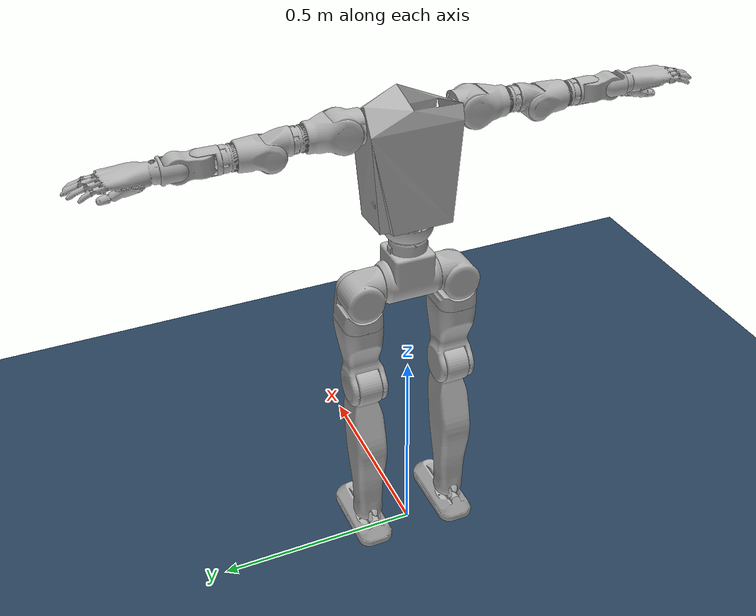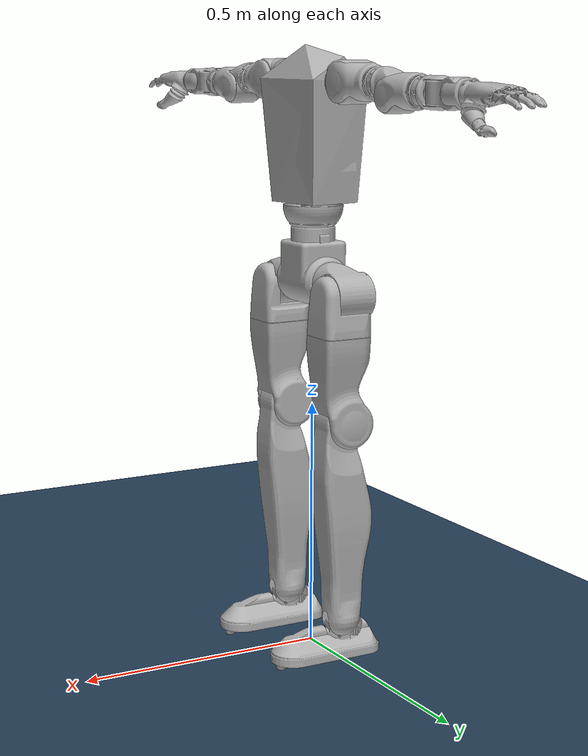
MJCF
<mujoco model="converted_robot scene">
  <include file="robot_pd.xml"/>

  <statistic center="0 0 1" extent="1.8"/>

  <!-- 初始姿态配置 -->
  <keyframe>
    <key name="home"
         qpos="0 0 0.75 1 0 0 0
               0 0 0 0 0 0
               0 0 0 0 0 0
               0 0 0
               0.3 0.1 0 0 0.4 0 0 0
               0.3 -0.1 0 0 0.4 0 0 0"/>
  </keyframe>

  <visual>
    <headlight diffuse="0.6 0.6 0.6" ambient="0.3 0.3 0.3" specular="0 0 0"/>
    <rgba haze="0.15 0.25 0.35 1"/>
    <global azimuth="160" elevation="-20"/>
  </visual>

  <asset>
    <texture type="skybox" builtin="gradient" rgb1="0.3 0.5 0.7" rgb2="0 0 0" width="512" height="3072"/>
    <texture type="2d" name="groundplane" builtin="checker" mark="edge" rgb1="0.2 0.3 0.4" rgb2="0.1 0.2 0.3"
      markrgb="0.8 0.8 0.8" width="300" height="300"/>
    <material name="groundplane" texture="groundplane" texuniform="true" texrepeat="5 5" reflectance="0.2"/>
  </asset>

  <worldbody>
    <light pos="0 0 3.5" dir="0 0 -1" directional="true"/>
    <!-- 地面配置：contype=2(属于组2), conaffinity=1(与组1碰撞，即与机器人碰撞) -->
    <geom name="floor" size="0 0 0.05" type="plane" material="groundplane"/>
  </worldbody>

</mujoco>

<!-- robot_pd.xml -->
<mujoco model="r2-1024">
  <compiler angle="radian" meshdir="meshes/r2-1024" autolimits="true"/>

  <option iterations="2" ls_iterations="5" gravity="0.0 0.0 -9.81">
    <flag eulerdamp="disable" />
  </option>

  <statistic meansize="0.05"/>

  <default>
    <default class="r2">
      <joint damping="1.0" armature="0.1"/>
      <geom friction="1.25 0.005 0.0001" condim="3" solimp="0.9 0.95 0.001" solref="0.02 1"/>
      <default class="visual">
        <geom type="mesh" contype="0" conaffinity="0" group="2" material="default_material"/>
      </default>
      <default class="collision">
        <geom group="3" mass="0" density="0" contype="1" conaffinity="0"/>
        <default class="foot">
          <geom type="capsule" size=".014"/>
          <default class="foot1">
            <geom fromto="-.035 0 -0.056 .02 0 -0.045"/>
          </default>
          <default class="foot2">
            <geom fromto=".02 0 -0.045 .115 0 -0.056"/>
          </default>
          <default class="foot3">
            <geom fromto=".14 -.03 -0.056 .14 .03 -0.056"/>
          </default>
          <default class="foot_single_capsule">
            <geom fromto=".115 0 -0.056 -.035 0 -0.056"/>
          </default>
        </default>
      </default>
      <default class="r2foot">
        <site group="1" pos="0 0 -0.05" />
        <geom rgba="0.231373 0.380392 0.705882 1" />
      </default>
      <site size="0.01" rgba="0.5 0.5 0.5 0.3" group="4"/>
    </default>
  </default>

  <worldbody>
    <light mode="targetbodycom" target="base_link" pos="2 0 2.5"/>
    <body name="base_link" quat="1 0 0 0" pos="0 0 0.7536" childclass="r2">
      <freejoint/>
      <geom class="visual" mesh="base_link_base_link" />
      <body name="Lhip-pitch" pos="0 0.0689999999999989 0">
        <inertial pos="-0.00254636309481921 0.0432466227241415 -0.0132087299961457" mass="0.386381137343126" diaginertia="0.000557023322800266 0.000420066199291086 0.00040739518569122" />
        <joint name="Lhip-pitch" type="hinge" range="0 0" axis="0 1 0" />
        <geom class="visual" mesh="Lhip-pitch_Lhip-pitch" />
        <body name="Lhip-roll" pos="0.0320272336417868 0.0500000000000001 -0.0199563600201637">
          <inertial pos="-0.00651166348866415 0.000823734562451911 -0.0348813012196115" mass="0.212465071618444" diaginertia="0.00031004863568897 0.000338004110916466 0.000320623038936227" />
          <joint name="Lhip-roll" type="hinge" range="0 0" axis="-0.999999070885153 0 -0.00136316867310442" />
          <geom class="visual" mesh="Lhip-roll_Lhip-roll" />
          <body name="Lleg-yaw" pos="-0.0239113717374919 0 -0.0650326556556895">
            <inertial pos="-0.00304648888175686 -0.00214822476705481 -0.104161278316881" mass="0.561993600265959" diaginertia="0.00342882830435025 0.00329783254603732 0.000900819979760054" />
            <joint name="Lleg-yaw" type="hinge" range="0 0" axis="0.00136316867310442 0 -0.999999070885153" />
            <geom class="visual" mesh="Lleg-yaw_Lleg-yaw" />
            <body name="Lknee-pitch" pos="-0.0117478026460974 -0.00500000000000012 -0.185016186137831">
              <inertial pos="-0.00034114773473138 8.91715773991553E-05 -0.109411813515231" mass="1.80581812965294" diaginertia="0.0258477371297394 0.0263068985117663 0.00182984789955674" />
              <joint name="Lknee-pitch" type="hinge" range="0 0" axis="0 -1 0" />
              <geom class="visual" mesh="Lknee-pitch_Lknee-pitch" />
              <body name="Lankle-pitch" pos="0.0222129220563394 0 -0.412470103272612">
                <inertial pos="-2.64456067233798E-06 -2.43383233011762E-09 -0.00812720824388957" mass="0.0171591478812246" diaginertia="2.45582108116279e-06 3.26464904844395e-06 2.25510633303582e-06" />
                <joint name="Lankle-pitch" type="hinge" range="0 0" axis="0 1 0" />
                <geom class="visual" mesh="Lankle-pitch_Lankle-pitch" />
                <body name="Lankle-roll" pos="0 0 -0.0149999999999999">
                  <inertial pos="0.0177048612304101 6.01478156170288E-08 -0.0261609815806904" mass="0.629303892913963" diaginertia="0.000363233257575956 0.00232893464645625 0.00261354084496983" />
                  <joint name="Lankle-roll" type="hinge" range="0 0" axis="1 0 0" />
                  <geom class="visual" mesh="Lankle-roll_Lankle-roll" />
                  <geom name="FL" pos=".115 0 -0.056" size="0.01"/>
                  <geom name="RL" pos="-.035 0 -0.056" size="0.01"/>
                  <geom class="foot_single_capsule"/>
                  <site name="left_foot" class="r2foot"/>
                </body>
              </body>
            </body>
          </body>
        </body>
      </body>
      <body name="Rhip-pitch" pos="0 -0.069000000000001 0">
        <inertial pos="-0.0025168889607323 -0.0466794286103524 -0.0170464249414737" mass="0.337531091535058" diaginertia="0.000472639978064759 0.000360017864797971 0.000358409876213602" />
        <joint name="Rhip-pitch" type="hinge" range="0 0" axis="0 -1 0" />
        <geom class="visual" mesh="Rhip-pitch_Rhip-pitch" />
        <body name="Rhip-roll" pos="0.0321289328949669 -0.0499999999999999 -0.0201939142077688">
          <inertial pos="-0.00803774464637705 -0.00101303984157786 -0.0367626564178768" mass="0.604619876832841" diaginertia="0.000867240931618366 0.000954982060712569 0.000888304416437135" />
          <joint name="Rhip-roll" type="hinge" range="0 0" axis="-0.999981854966748 0 0.00602409638554543" />
          <geom class="visual" mesh="Rhip-roll_Rhip-roll" />
          <body name="Rleg-yaw" pos="-0.0243911307842633 0 -0.0648542422595855">
            <inertial pos="-0.00312326966809828 0.00213973651422342 -0.103905105276982" mass="1.51191680217784" diaginertia="0.00300966586461575 0.00260974676832353 0.00235519867991485" />
            <joint name="Rleg-yaw" type="hinge" range="0 0" axis="-0.00602409638554532 0 -0.999981854966748" />
            <geom class="visual" mesh="Rleg-yaw_Rleg-yaw" />
            <body name="Pknee-pitch" pos="-0.0111142763810016 0.00499999999999955 -0.184936402204994">
              <inertial pos="-0.00115049944926864 8.99871313251588E-05 -0.109396083318006" mass="1.80573124403558" diaginertia="0.0258408754277981 0.0263028229689853 0.00183261634288706" />
              <joint name="Rknee-pitch" type="hinge" range="0 0" axis="0 1 0" />
              <geom class="visual" mesh="Pknee-pitch_Pknee-pitch" />
              <body name="Rankle-pitch" pos="0.0191653024840886 0 -0.412622940686401">
                <inertial pos="-2.64456067249064E-06 -2.43383237175099E-09 -0.00812720824388957" mass="0.0171591478812247" diaginertia="2.4558210811628e-06 3.26464904844394e-06 2.25510633303582e-06" />
                <joint name="Rankle-pitch" type="hinge" range="0 0" axis="0 -1 0" />
                <geom class="visual" mesh="Rankle-pitch_Rankle-pitch" />
                <body name="Rankle-roll" pos="0 0 -0.0149999999999999">
                  <inertial pos="0.01770486123041 6.01478156170288E-08 -0.0261609815806908" mass="0.62930389291396" diaginertia="0.000363233257575954 0.00232893464645625 0.00261354084496982" />
                  <joint name="Rankle-roll" type="hinge" range="0 0" axis="1 0 0" />
                  <geom class="visual" mesh="Rankle-roll_Rankle-roll" />
                  <geom name="FR" pos=".115 0 -0.056" size="0.01"/>
                  <geom name="RR" pos="-.035 0 -0.056" size="0.01"/>
                  <geom class="foot_single_capsule"/>
                  <site name="right_foot" class="r2foot"/>
                </body>
              </body>
            </body>
          </body>
        </body>
      </body>

      <body name="waist-yaw" pos="0 0 0.1015">
        <inertial pos="0.000838548932558386 1.9429471902685E-06 0.0186119972543407" mass="0.167524107737489" diaginertia="9.88251687847136e-05 0.000102644683208664 0.000183718897605441" />
        <joint name="waist-yaw" type="hinge" range="0 0" axis="0 0 1" />
        <geom class="visual" mesh="waist-yaw_waist-yaw" />
        <body name="waist-roll" pos="0 0 0.0469999999999995">
          <inertial pos="1.97709520768918E-08 1.97091613064748E-08 2.31318830895555E-08" mass="0.0511904050675653" diaginertia="3.39482519018086e-06 5.66454429374261e-06 4.73575691209588e-06" />
          <joint name="waist-roll" type="hinge" range="0 0" axis="-1 0 0" />
          <geom class="visual" mesh="waist-roll_waist-roll" />
          <body name="waist-pitch">
            <inertial pos="0.00344100284916034 0.0033421324318141 0.178579205212244" mass="6.84868650679273" diaginertia="0.0455180072144121 0.0320278136152675 0.0239625384602924" />
            <joint name="waist-pitch" type="hinge" axis="0 -0.999993041789322 0.00373046551240819" />
            <geom class="visual" mesh="waist-pitch_waist-pitch" />
            <body name="Rshoulder-pitch" pos="0.00124892699365971 -0.103096515714583 0.242383061761496">
              <inertial pos="1.19739327765281E-05 -0.037631766969166 0.00257001764547576" mass="0.351201296180657" diaginertia="0.000529028614216069 0.000352986817594136 0.000381088824596585" />
              <joint name="Rshoulder-pitch" type="hinge" range="0 0" axis="0 0.999993041789322 -0.00373046551240969" />
              <geom class="visual" mesh="Rshoulder-pitch_Rshoulder-pitch" />
              <body name="Rshoulder-roll" pos="-0.00124892699365824 -0.0460005024348026 -4.88822667354949E-05">
                <inertial pos="-0.000812832414537328 -0.0271831429862336 0.00142268753344876" mass="0.901300574234884" diaginertia="0.000874742091802788 0.000766595366318081 0.00105432805094867" />
                <joint name="Rshoulder-roll" type="hinge" range="0 0" axis="0.999986682697375 -1.92523928883499E-05 -0.00516081943538461" />
                <geom class="visual" mesh="Rshoulder-roll_Rshoulder-roll" />
                <body name="Rarm-pitch" pos="0.00124892699365715 -0.0939985234157071 0.000571147438479858">
                  <inertial pos="-5.86523797540886E-05 -0.0480215847112014 -0.0115614509170335" mass="0.163656043089394" diaginertia="0.000205301785507928 0.000137025660099078 0.000154567593086099" />
                  <joint name="Rarm-pitch" type="hinge" range="0 0" axis="0 0.999993041789322 -0.00373046551241809" />
                  <geom class="visual" mesh="Rarm-pitch_Rarm-pitch" />
                  <body name="Rarm-roll" pos="-0.00124892699365667 -0.0600749118698925 -0.019969050977966">
                    <inertial pos="0.00117500064437485 -0.0296883325386475 0.00611806709758506" mass="0.790024730889843" diaginertia="0.000626951373773776 0.000565474955147993 0.000724094109271216" />
                    <joint name="Rarm-roll" type="hinge" range="0 0" axis="-0.999986682697375 1.92523928882734E-05 0.00516081943539328" />
                    <geom class="visual" mesh="Rarm-roll_Rarm-roll" />
                    <body name="Rforearm-pitch" pos="0.00118699671361817 -0.0874688267955187 0.00851953486706497">
                      <inertial pos="-7.39438371644141E-12 -0.0332659563873272 0.000124095077057351" mass="0.0616964140219398" diaginertia="1.71013816255747e-05 1.4645711027657e-05 2.68440203486961e-05" />
                      <joint name="Rforearm-pitch" type="hinge" range="0 0" axis="0 0.999993041789322 -0.00373046551242672" />
                      <geom class="visual" mesh="Rforearm-pitch_Rforearm-pitch" />
                      <body name="Rforearm-yaw" pos="0 -0.0519996381730424 0.000193984206656894">
                        <inertial pos="-0.00144914299769784 -0.024023819187538 -0.00133242424970514" mass="0.286322539919696" diaginertia="0.000207156464271699 7.94674704834646e-05 0.000207083820030091" />
                        <joint name="Rforearm-yaw" type="hinge" range="0 0" axis="0.00516085534561842 0.00373041583270884 0.999979724579362" />
                        <geom class="visual" mesh="Rforearm-yaw_Rforearm-yaw" />
                        <body name="Rforearm-roll" pos="0 -0.0479996660058844 0.000179062344592917">
                          <inertial pos="-0.000432292829653728 -0.0218265392717949 -9.51317515698324E-05" mass="0.0776563326897135" diaginertia="2.75633138511378e-05 1.84792179561101e-05 1.89294300843364e-05" />
                          <joint name="Rforearm-roll" type="hinge" range="0 0" axis="-0.999986682697376 1.92523927639293E-05 0.00516081943529982" />
                          <geom class="visual" mesh="Rforearm-roll_Rforearm-roll" />
                          <body name="Rwrist-pitch" pos="-0.000310603277652269 -0.0289997922319544 0.000109786488636632">
                            <inertial pos="0.000399588449917054 -0.099108422325107 0.00163681066572025" mass="0.0581113383823661" diaginertia="2.27805031940733e-05 1.16579826647684e-05 2.76365481980842e-05" />
                            <joint name="Rwrist-pitch" type="hinge" range="0 0" axis="0 0.999993041789322 -0.00373046551231421" />
                            <geom class="visual" mesh="Rwrist-pitch_Rwrist-pitch" />
                          </body>
                        </body>
                      </body>
                    </body>
                  </body>
                </body>
              </body>
            </body>
            <body name="Lshoulder-pitch" pos="0.00127140572076783 0.105918012627561 0.245887711508865">
              <inertial pos="-9.37455533417397E-06 0.0366339168984884 -0.00199140885891902" mass="0.351201337508422" diaginertia="0.000529028510877296 0.000353281271768694 0.000380794448638633" />
              <joint name="Lshoulder-pitch" type="hinge" range="0 0" axis="0 -0.999993041789322 0.00373046551240926" />
              <geom class="visual" mesh="Lshoulder-pitch_Lshoulder-pitch" />
              <body name="Lshoulder-roll" pos="-2.24787271085117E-05 0.0449837042723494 -0.00445218798751273">
                <inertial pos="0.00207301104207318 0.0271920986739509 0.00097801408904552" mass="0.901300591228606" diaginertia="0.000874808646674644 0.000766264670712621 0.00105459222467771" />
                <joint name="Lshoulder-roll" type="hinge" range="0 0" axis="-0.999986682697375 1.92523928881331E-05 0.00516081943538374" />
                <geom class="visual" mesh="Lshoulder-roll_Lshoulder-roll" />
                <body name="Larm-pitch" pos="0 0.106999255471457 -0.000399159809829575">
                  <inertial pos="-6.25416723689237E-05 0.0349340834086484 -0.0118708978450517" mass="0.163656024444727" diaginertia="0.000205301678168692 0.000137463543125656 0.000154129771734942" />
                  <joint name="Larm-pitch" type="hinge" range="0 0" axis="0 -0.999993041789322 0.00373046551243847" />
                  <geom class="visual" mesh="Larm-pitch_Larm-pitch" />
                  <body name="Larm-roll" pos="-0.000103217106914702 0.0469250646474482 -0.0201749263706734">
                    <inertial pos="3.07237365987437E-05 0.0297324322639182 0.00570310540618657" mass="0.790024757738838" diaginertia="0.000626951454863792 0.000564548244316752 0.00072502073772359" />
                    <joint name="Larm-roll" type="hinge" range="0 0" axis="0.999986682697375 -1.92523928882734E-05 -0.00516081943539824" />
                    <geom class="visual" mesh="Larm-roll_Larm-roll" />
                    <body name="Lforearm-pitch" pos="4.12868268756597E-05 0.101529137056791 0.00762119246809084">
                      <inertial pos="9.4264852867898E-11 0.0192660538330411 -7.18685468062419E-05" mass="0.0616964130134071" diaginertia="1.71013819680551e-05 1.46457108455345e-05 2.68440199012118e-05" />
                      <joint name="Lforearm-pitch" type="hinge" range="0 0" axis="0 -0.999993041789322 0.00373046551240292" />
                      <geom class="visual" mesh="Lforearm-pitch_Lforearm-pitch" />
                      <body name="Lforearm-yaw" pos="0 0.0379997355879942 -0.000141757689466171">
                        <inertial pos="0.00143438826285103 0.0240131539873873 -0.00152650752821093" mass="0.28632253924729" diaginertia="0.000207149926817268 7.9380835666588e-05 0.000207176993320116" />
                        <joint name="Lforearm-yaw" type="hinge" range="0 0" axis="-0.00516085534580852 -0.00373041583267726 -0.999979724579361" />
                        <geom class="visual" mesh="Lforearm-yaw_Lforearm-yaw" />
                        <body name="Lforearm-roll" pos="0 0.0479996660058964 -0.000179062344588921">
                          <inertial pos="0.000430442058502199 0.021825205255057 -0.000262424408970063" mass="0.0776563366714877" diaginertia="2.75628437300679e-05 1.8480308623422e-05 1.89288080879214e-05" />
                          <joint name="Lforearm-roll" type="hinge" range="0 0" axis="-0.999986682697374 1.92523929177407E-05 0.00516081943549098" />
                          <geom class="visual" mesh="Lforearm-roll_Lforearm-roll" />
                          <body name="Lwrist-pitch" pos="0.000310603277656869 0.0289997922319544 -0.000109786488636687">
                            <inertial pos="0.00515818043207492 0.0895589413698149 -0.00833217517594909" mass="0.0804763862959201" diaginertia="3.68663903336892e-05 2.82436939984766e-05 4.58942499829067e-05" />
                            <joint name="Lwrist-pitch" type="hinge" range="0 0" axis="0 -0.999993041789322 0.00373046551231349" />
                            <geom class="visual" mesh="Lwrist-pitch_Lwrist-pitch" />
                          </body>
                        </body>
                      </body>
                    </body>
                  </body>
                </body>
              </body>
            </body>
          </body>
        </body>
      </body>
    </body>
  </worldbody>

  <asset>
    <material name="default_material" rgba="0.7 0.7 0.7 1" />
    <mesh name="base_link_base_link" file="meshes/r2-1024/meshes/base_link.STL" />
    <mesh name="Rhip-pitch_Rhip-pitch" file="meshes/r2-1024/meshes/Rhip-pitch.STL" />
    <mesh name="Rhip-roll_Rhip-roll" file="meshes/r2-1024/meshes/Rhip-roll.STL" />
    <mesh name="Rleg-yaw_Rleg-yaw" file="meshes/r2-1024/meshes/Rleg-yaw.STL" />
    <mesh name="Pknee-pitch_Pknee-pitch" file="meshes/r2-1024/meshes/Pknee-pitch.STL" />
    <mesh name="Rankle-pitch_Rankle-pitch" file="meshes/r2-1024/meshes/Rankle-pitch.STL" />
    <mesh name="Rankle-roll_Rankle-roll" file="meshes/r2-1024/meshes/Rankle-roll.STL" />
    <mesh name="Lhip-pitch_Lhip-pitch" file="meshes/r2-1024/meshes/Lhip-pitch.STL" />
    <mesh name="Lhip-roll_Lhip-roll" file="meshes/r2-1024/meshes/Lhip-roll.STL" />
    <mesh name="Lleg-yaw_Lleg-yaw" file="meshes/r2-1024/meshes/Lleg-yaw.STL" />
    <mesh name="Lknee-pitch_Lknee-pitch" file="meshes/r2-1024/meshes/Lknee-pitch.STL" />
    <mesh name="Lankle-pitch_Lankle-pitch" file="meshes/r2-1024/meshes/Lankle-pitch.STL" />
    <mesh name="Lankle-roll_Lankle-roll" file="meshes/r2-1024/meshes/Lankle-roll.STL" />
    <mesh name="waist-yaw_waist-yaw" file="meshes/r2-1024/meshes/waist-yaw.STL" />
    <mesh name="waist-roll_waist-roll" file="meshes/r2-1024/meshes/waist-roll.STL" />
    <mesh name="waist-pitch_waist-pitch" file="meshes/r2-1024/meshes/waist-pitch.STL" />
    <mesh name="Rshoulder-pitch_Rshoulder-pitch" file="meshes/r2-1024/meshes/Rshoulder-pitch.STL" />
    <mesh name="Rshoulder-roll_Rshoulder-roll" file="meshes/r2-1024/meshes/Rshoulder-roll.STL" />
    <mesh name="Rarm-pitch_Rarm-pitch" file="meshes/r2-1024/meshes/Rarm-pitch.STL" inertia="shell" />
    <mesh name="Rarm-roll_Rarm-roll" file="meshes/r2-1024/meshes/Rarm-roll.STL" />
    <mesh name="Rforearm-pitch_Rforearm-pitch" file="meshes/r2-1024/meshes/Rforearm-pitch.STL" />
    <mesh name="Rforearm-yaw_Rforearm-yaw" file="meshes/r2-1024/meshes/Rforearm-yaw.STL" />
    <mesh name="Rforearm-roll_Rforearm-roll" file="meshes/r2-1024/meshes/Rforearm-roll.STL" />
    <mesh name="Rwrist-pitch_Rwrist-pitch" file="meshes/r2-1024/meshes/Rwrist-pitch.STL" />
    <mesh name="Lshoulder-pitch_Lshoulder-pitch" file="meshes/r2-1024/meshes/Lshoulder-pitch.STL" />
    <mesh name="Lshoulder-roll_Lshoulder-roll" file="meshes/r2-1024/meshes/Lshoulder-roll.STL" />
    <mesh name="Larm-pitch_Larm-pitch" file="meshes/r2-1024/meshes/Larm-pitch.STL" inertia="shell" />
    <mesh name="Larm-roll_Larm-roll" file="meshes/r2-1024/meshes/Larm-roll.STL" />
    <mesh name="Lforearm-pitch_Lforearm-pitch" file="meshes/r2-1024/meshes/Lforearm-pitch.STL" />
    <mesh name="Lforearm-yaw_Lforearm-yaw" file="meshes/r2-1024/meshes/Lforearm-yaw.STL" />
    <mesh name="Lforearm-roll_Lforearm-roll" file="meshes/r2-1024/meshes/Lforearm-roll.STL" />
    <mesh name="Lwrist-pitch_Lwrist-pitch" file="meshes/r2-1024/meshes/Lwrist-pitch.STL" />
  </asset>

<actuator>
  <!--  腑部执行器（力矩控制）  -->
  <motor joint="Lhip-pitch" name="left_hip_pitch" ctrlrange="-105 105"/>
  <motor joint="Lhip-roll" name="left_hip_roll" ctrlrange="-105 105"/>
  <motor joint="Lleg-yaw" name="left_leg_yaw" ctrlrange="-105 105"/>
  <motor joint="Lknee-pitch" name="left_knee" ctrlrange="-135 135"/>
  <motor joint="Lankle-pitch" name="left_ankle_pitch" ctrlrange="-30 30"/>
  <motor joint="Lankle-roll" name="left_ankle_roll" ctrlrange="-30 30"/>
  <!--  右腿关节控制器  -->
  <motor joint="Rhip-pitch" name="right_hip_pitch" ctrlrange="-105 105"/>
  <motor joint="Rhip-roll" name="right_hip_roll" ctrlrange="-105 105"/>
  <motor joint="Rleg-yaw" name="right_leg_yaw" ctrlrange="-105 105"/>
  <motor joint="Rknee-pitch" name="right_knee" ctrlrange="-135 135"/>
  <motor joint="Rankle-pitch" name="right_ankle_pitch" ctrlrange="-30 30"/>
  <motor joint="Rankle-roll" name="right_ankle_roll" ctrlrange="-30 30"/>
  <!--  腰部执行器  -->
  <motor joint="waist-yaw" name="waist_yaw" ctrlrange="-105 105"/>
  <motor joint="waist-roll" name="waist_roll" ctrlrange="-30 30"/>
  <motor joint="waist-pitch" name="waist_pitch" ctrlrange="-30 30"/>
  <!--  左臂执行器  -->
  <motor joint="Lshoulder-pitch" name="left_shoulder_pitch" ctrlrange="-60 60"/>
  <motor joint="Lshoulder-roll" name="left_shoulder_roll" ctrlrange="-60 60"/>
  <motor joint="Larm-pitch" name="left_arm_pitch" ctrlrange="-30 30"/>
  <motor joint="Larm-roll" name="left_arm_roll" ctrlrange="-30 30"/>
  <motor joint="Lforearm-pitch" name="left_forearm_pitch" ctrlrange="-18 18"/>
  <motor joint="Lforearm-yaw" name="left_forearm_yaw" ctrlrange="-18 18"/>
  <motor joint="Lforearm-roll" name="left_forearm_roll" ctrlrange="-18 18"/>
  <motor joint="Lwrist-pitch" name="left_wrist_pitch" ctrlrange="-18 18"/>
  <!--  右臂执行器  -->
  <motor joint="Rshoulder-pitch" name="right_shoulder_pitch" ctrlrange="-60 60"/>
  <motor joint="Rshoulder-roll" name="right_shoulder_roll" ctrlrange="-60 60"/>
  <motor joint="Rarm-pitch" name="right_arm_pitch" ctrlrange="-30 30"/>
  <motor joint="Rarm-roll" name="right_arm_roll" ctrlrange="-30 30"/>
  <motor joint="Rforearm-pitch" name="right_forearm_pitch" ctrlrange="-18 18"/>
  <motor joint="Rforearm-yaw" name="right_forearm_yaw" ctrlrange="-18 18"/>
  <motor joint="Rforearm-roll" name="right_forearm_roll" ctrlrange="-18 18"/>
  <motor joint="Rwrist-pitch" name="right_wrist_pitch" ctrlrange="-18 18"/>
</actuator>

</mujoco>
